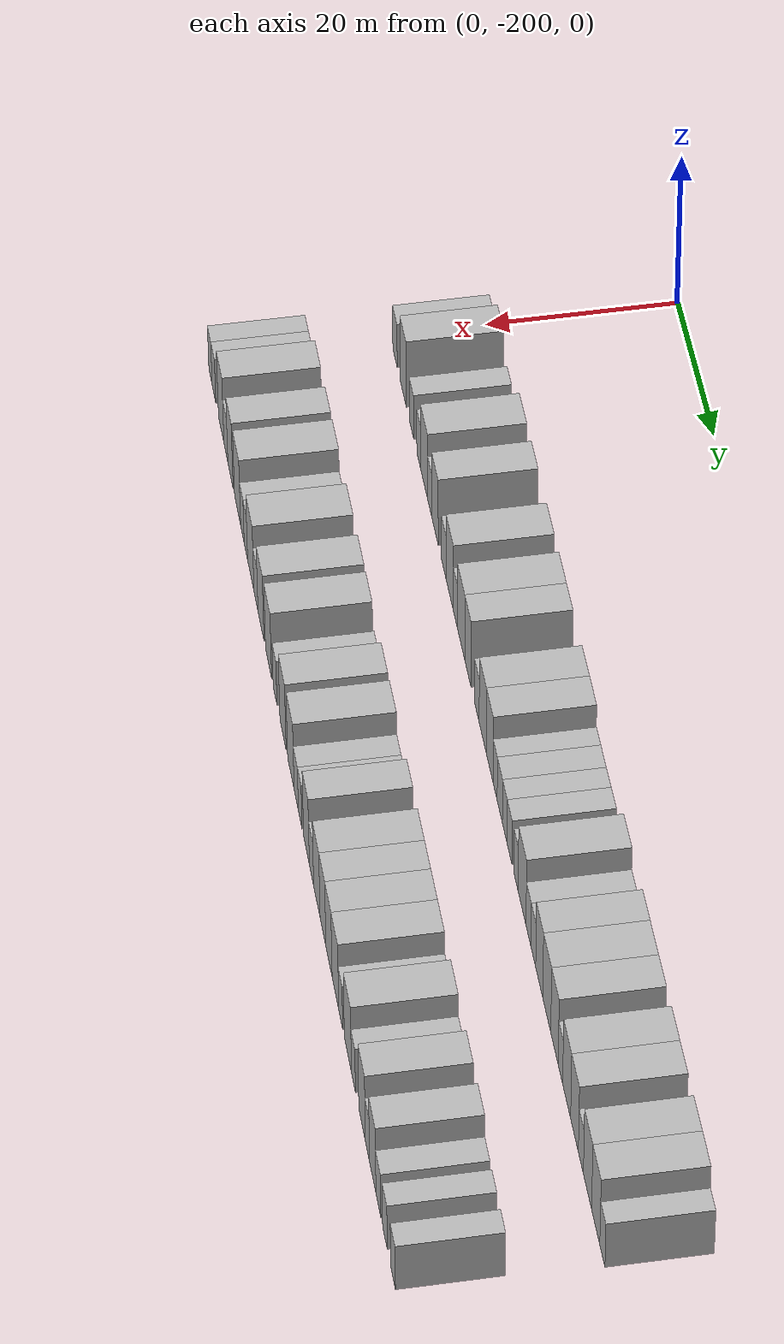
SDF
<sdf version="1.6">
 <world name="default">
  <model name="building_1">
   <static>1</static>
   <pose>25.0000 -196.5566 0 0.000000 0.000000 0.000000</pose>
   <link name="link">
    <pose>0 0 3.00 0 0 0</pose>
    <collision name="collision"><geometry><box><size>10.0000 2.8868 6.0000</size></box></geometry></collision>
    <visual name="visual">
     <cast_shadows>0</cast_shadows>
     <geometry><box><size>10.0000 2.8868 6.0000</size></box></geometry>
     <material>
      <script>
       <uri>model://HANNAS_wall/materials/scripts</uri>
       <uri>model://HANNAS_wall/materials/textures</uri>
       <name>vrc/HANNAS_wall</name>
      </script>
     </material>
    </visual>
   </link>
  </model>
  <model name="building_2">
   <static>1</static>
   <pose>25.0000 -191.1254 0 0.000000 0.000000 0.000000</pose>
   <link name="link">
    <pose>0 0 4.50 0 0 0</pose>
    <collision name="collision"><geometry><box><size>10.0000 3.9757 9.0000</size></box></geometry></collision>
    <visual name="visual">
     <cast_shadows>0</cast_shadows>
     <geometry><box><size>10.0000 3.9757 9.0000</size></box></geometry>
     <material>
      <script>
       <uri>model://HANNAS_wall/materials/scripts</uri>
       <uri>model://HANNAS_wall/materials/textures</uri>
       <name>vrc/HANNAS_wall</name>
      </script>
     </material>
    </visual>
   </link>
  </model>
  <model name="building_3">
   <static>1</static>
   <pose>25.0000 -185.7663 0 0.000000 0.000000 0.000000</pose>
   <link name="link">
    <pose>0 0 3.00 0 0 0</pose>
    <collision name="collision"><geometry><box><size>10.0000 2.7424 6.0000</size></box></geometry></collision>
    <visual name="visual">
     <cast_shadows>0</cast_shadows>
     <geometry><box><size>10.0000 2.7424 6.0000</size></box></geometry>
     <material>
      <script>
       <uri>model://HANNAS_wall/materials/scripts</uri>
       <uri>model://HANNAS_wall/materials/textures</uri>
       <name>vrc/HANNAS_wall</name>
      </script>
     </material>
    </visual>
   </link>
  </model>
  <model name="building_4">
   <static>1</static>
   <pose>25.0000 -181.1472 0 0.000000 0.000000 0.000000</pose>
   <link name="link">
    <pose>0 0 3.00 0 0 0</pose>
    <collision name="collision"><geometry><box><size>10.0000 2.4958 6.0000</size></box></geometry></collision>
    <visual name="visual">
     <cast_shadows>0</cast_shadows>
     <geometry><box><size>10.0000 2.4958 6.0000</size></box></geometry>
     <material>
      <script>
       <uri>model://HANNAS_wall/materials/scripts</uri>
       <uri>model://HANNAS_wall/materials/textures</uri>
       <name>vrc/HANNAS_wall</name>
      </script>
     </material>
    </visual>
   </link>
  </model>
  <model name="building_5">
   <static>1</static>
   <pose>25.0000 -177.6643 0 0.000000 0.000000 0.000000</pose>
   <link name="link">
    <pose>0 0 4.50 0 0 0</pose>
    <collision name="collision"><geometry><box><size>10.0000 4.4701 9.0000</size></box></geometry></collision>
    <visual name="visual">
     <cast_shadows>0</cast_shadows>
     <geometry><box><size>10.0000 4.4701 9.0000</size></box></geometry>
     <material>
      <script>
       <uri>model://HANNAS_wall/materials/scripts</uri>
       <uri>model://HANNAS_wall/materials/textures</uri>
       <name>vrc/HANNAS_wall</name>
      </script>
     </material>
    </visual>
   </link>
  </model>
  <model name="building_6">
   <static>1</static>
   <pose>25.0000 -174.1465 0 0.000000 0.000000 0.000000</pose>
   <link name="link">
    <pose>0 0 3.00 0 0 0</pose>
    <collision name="collision"><geometry><box><size>10.0000 2.5654 6.0000</size></box></geometry></collision>
    <visual name="visual">
     <cast_shadows>0</cast_shadows>
     <geometry><box><size>10.0000 2.5654 6.0000</size></box></geometry>
     <material>
      <script>
       <uri>model://HANNAS_wall/materials/scripts</uri>
       <uri>model://HANNAS_wall/materials/textures</uri>
       <name>vrc/HANNAS_wall</name>
      </script>
     </material>
    </visual>
   </link>
  </model>
  <model name="building_7">
   <static>1</static>
   <pose>25.0000 -170.8509 0 0.000000 0.000000 0.000000</pose>
   <link name="link">
    <pose>0 0 4.50 0 0 0</pose>
    <collision name="collision"><geometry><box><size>10.0000 4.0258 9.0000</size></box></geometry></collision>
    <visual name="visual">
     <cast_shadows>0</cast_shadows>
     <geometry><box><size>10.0000 4.0258 9.0000</size></box></geometry>
     <material>
      <script>
       <uri>model://HANNAS_wall/materials/scripts</uri>
       <uri>model://HANNAS_wall/materials/textures</uri>
       <name>vrc/HANNAS_wall</name>
      </script>
     </material>
    </visual>
   </link>
  </model>
  <model name="building_8">
   <static>1</static>
   <pose>25.0000 -165.3826 0 0.000000 0.000000 0.000000</pose>
   <link name="link">
    <pose>0 0 3.00 0 0 0</pose>
    <collision name="collision"><geometry><box><size>10.0000 2.9108 6.0000</size></box></geometry></collision>
    <visual name="visual">
     <cast_shadows>0</cast_shadows>
     <geometry><box><size>10.0000 2.9108 6.0000</size></box></geometry>
     <material>
      <script>
       <uri>model://HANNAS_wall/materials/scripts</uri>
       <uri>model://HANNAS_wall/materials/textures</uri>
       <name>vrc/HANNAS_wall</name>
      </script>
     </material>
    </visual>
   </link>
  </model>
  <model name="building_9">
   <static>1</static>
   <pose>25.0000 -161.6923 0 0.000000 0.000000 0.000000</pose>
   <link name="link">
    <pose>0 0 4.50 0 0 0</pose>
    <collision name="collision"><geometry><box><size>10.0000 4.4697 9.0000</size></box></geometry></collision>
    <visual name="visual">
     <cast_shadows>0</cast_shadows>
     <geometry><box><size>10.0000 4.4697 9.0000</size></box></geometry>
     <material>
      <script>
       <uri>model://HANNAS_wall/materials/scripts</uri>
       <uri>model://HANNAS_wall/materials/textures</uri>
       <name>vrc/HANNAS_wall</name>
      </script>
     </material>
    </visual>
   </link>
  </model>
  <model name="building_10">
   <static>1</static>
   <pose>25.0000 -158.2106 0 0.000000 0.000000 0.000000</pose>
   <link name="link">
    <pose>0 0 3.00 0 0 0</pose>
    <collision name="collision"><geometry><box><size>10.0000 2.4939 6.0000</size></box></geometry></collision>
    <visual name="visual">
     <cast_shadows>0</cast_shadows>
     <geometry><box><size>10.0000 2.4939 6.0000</size></box></geometry>
     <material>
      <script>
       <uri>model://HANNAS_wall/materials/scripts</uri>
       <uri>model://HANNAS_wall/materials/textures</uri>
       <name>vrc/HANNAS_wall</name>
      </script>
     </material>
    </visual>
   </link>
  </model>
  <model name="building_11">
   <static>1</static>
   <pose>25.0000 -154.7831 0 0.000000 0.000000 0.000000</pose>
   <link name="link">
    <pose>0 0 4.50 0 0 0</pose>
    <collision name="collision"><geometry><box><size>10.0000 4.3610 9.0000</size></box></geometry></collision>
    <visual name="visual">
     <cast_shadows>0</cast_shadows>
     <geometry><box><size>10.0000 4.3610 9.0000</size></box></geometry>
     <material>
      <script>
       <uri>model://HANNAS_wall/materials/scripts</uri>
       <uri>model://HANNAS_wall/materials/textures</uri>
       <name>vrc/HANNAS_wall</name>
      </script>
     </material>
    </visual>
   </link>
  </model>
  <model name="building_12">
   <static>1</static>
   <pose>25.0000 -150.7188 0 0.000000 0.000000 0.000000</pose>
   <link name="link">
    <pose>0 0 4.50 0 0 0</pose>
    <collision name="collision"><geometry><box><size>10.0000 3.7677 9.0000</size></box></geometry></collision>
    <visual name="visual">
     <cast_shadows>0</cast_shadows>
     <geometry><box><size>10.0000 3.7677 9.0000</size></box></geometry>
     <material>
      <script>
       <uri>model://HANNAS_wall/materials/scripts</uri>
       <uri>model://HANNAS_wall/materials/textures</uri>
       <name>vrc/HANNAS_wall</name>
      </script>
     </material>
    </visual>
   </link>
  </model>
  <model name="building_13">
   <static>1</static>
   <pose>25.0000 -145.3944 0 0.000000 0.000000 0.000000</pose>
   <link name="link">
    <pose>0 0 3.00 0 0 0</pose>
    <collision name="collision"><geometry><box><size>10.0000 2.8811 6.0000</size></box></geometry></collision>
    <visual name="visual">
     <cast_shadows>0</cast_shadows>
     <geometry><box><size>10.0000 2.8811 6.0000</size></box></geometry>
     <material>
      <script>
       <uri>model://HANNAS_wall/materials/scripts</uri>
       <uri>model://HANNAS_wall/materials/textures</uri>
       <name>vrc/HANNAS_wall</name>
      </script>
     </material>
    </visual>
   </link>
  </model>
  <model name="building_14">
   <static>1</static>
   <pose>25.0000 -141.8733 0 0.000000 0.000000 0.000000</pose>
   <link name="link">
    <pose>0 0 4.50 0 0 0</pose>
    <collision name="collision"><geometry><box><size>10.0000 4.1610 9.0000</size></box></geometry></collision>
    <visual name="visual">
     <cast_shadows>0</cast_shadows>
     <geometry><box><size>10.0000 4.1610 9.0000</size></box></geometry>
     <material>
      <script>
       <uri>model://HANNAS_wall/materials/scripts</uri>
       <uri>model://HANNAS_wall/materials/textures</uri>
       <name>vrc/HANNAS_wall</name>
      </script>
     </material>
    </visual>
   </link>
  </model>
  <model name="building_15">
   <static>1</static>
   <pose>25.0000 -137.8103 0 0.000000 0.000000 0.000000</pose>
   <link name="link">
    <pose>0 0 4.50 0 0 0</pose>
    <collision name="collision"><geometry><box><size>10.0000 3.9649 9.0000</size></box></geometry></collision>
    <visual name="visual">
     <cast_shadows>0</cast_shadows>
     <geometry><box><size>10.0000 3.9649 9.0000</size></box></geometry>
     <material>
      <script>
       <uri>model://HANNAS_wall/materials/scripts</uri>
       <uri>model://HANNAS_wall/materials/textures</uri>
       <name>vrc/HANNAS_wall</name>
      </script>
     </material>
    </visual>
   </link>
  </model>
  <model name="building_16">
   <static>1</static>
   <pose>25.0000 -134.6225 0 0.000000 0.000000 0.000000</pose>
   <link name="link">
    <pose>0 0 3.00 0 0 0</pose>
    <collision name="collision"><geometry><box><size>10.0000 2.4107 6.0000</size></box></geometry></collision>
    <visual name="visual">
     <cast_shadows>0</cast_shadows>
     <geometry><box><size>10.0000 2.4107 6.0000</size></box></geometry>
     <material>
      <script>
       <uri>model://HANNAS_wall/materials/scripts</uri>
       <uri>model://HANNAS_wall/materials/textures</uri>
       <name>vrc/HANNAS_wall</name>
      </script>
     </material>
    </visual>
   </link>
  </model>
  <model name="building_17">
   <static>1</static>
   <pose>25.0000 -131.9212 0 0.000000 0.000000 0.000000</pose>
   <link name="link">
    <pose>0 0 3.00 0 0 0</pose>
    <collision name="collision"><geometry><box><size>10.0000 2.9920 6.0000</size></box></geometry></collision>
    <visual name="visual">
     <cast_shadows>0</cast_shadows>
     <geometry><box><size>10.0000 2.9920 6.0000</size></box></geometry>
     <material>
      <script>
       <uri>model://HANNAS_wall/materials/scripts</uri>
       <uri>model://HANNAS_wall/materials/textures</uri>
       <name>vrc/HANNAS_wall</name>
      </script>
     </material>
    </visual>
   </link>
  </model>
  <model name="building_18">
   <static>1</static>
   <pose>25.0000 -129.0962 0 0.000000 0.000000 0.000000</pose>
   <link name="link">
    <pose>0 0 3.00 0 0 0</pose>
    <collision name="collision"><geometry><box><size>10.0000 2.6580 6.0000</size></box></geometry></collision>
    <visual name="visual">
     <cast_shadows>0</cast_shadows>
     <geometry><box><size>10.0000 2.6580 6.0000</size></box></geometry>
     <material>
      <script>
       <uri>model://HANNAS_wall/materials/scripts</uri>
       <uri>model://HANNAS_wall/materials/textures</uri>
       <name>vrc/HANNAS_wall</name>
      </script>
     </material>
    </visual>
   </link>
  </model>
  <model name="building_19">
   <static>1</static>
   <pose>25.0000 -126.3533 0 0.000000 0.000000 0.000000</pose>
   <link name="link">
    <pose>0 0 3.00 0 0 0</pose>
    <collision name="collision"><geometry><box><size>10.0000 2.8278 6.0000</size></box></geometry></collision>
    <visual name="visual">
     <cast_shadows>0</cast_shadows>
     <geometry><box><size>10.0000 2.8278 6.0000</size></box></geometry>
     <material>
      <script>
       <uri>model://HANNAS_wall/materials/scripts</uri>
       <uri>model://HANNAS_wall/materials/textures</uri>
       <name>vrc/HANNAS_wall</name>
      </script>
     </material>
    </visual>
   </link>
  </model>
  <model name="building_20">
   <static>1</static>
   <pose>25.0000 -122.6605 0 0.000000 0.000000 0.000000</pose>
   <link name="link">
    <pose>0 0 3.00 0 0 0</pose>
    <collision name="collision"><geometry><box><size>10.0000 2.5579 6.0000</size></box></geometry></collision>
    <visual name="visual">
     <cast_shadows>0</cast_shadows>
     <geometry><box><size>10.0000 2.5579 6.0000</size></box></geometry>
     <material>
      <script>
       <uri>model://HANNAS_wall/materials/scripts</uri>
       <uri>model://HANNAS_wall/materials/textures</uri>
       <name>vrc/HANNAS_wall</name>
      </script>
     </material>
    </visual>
   </link>
  </model>
  <model name="building_21">
   <static>1</static>
   <pose>25.0000 -119.1797 0 0.000000 0.000000 0.000000</pose>
   <link name="link">
    <pose>0 0 4.50 0 0 0</pose>
    <collision name="collision"><geometry><box><size>10.0000 4.4037 9.0000</size></box></geometry></collision>
    <visual name="visual">
     <cast_shadows>0</cast_shadows>
     <geometry><box><size>10.0000 4.4037 9.0000</size></box></geometry>
     <material>
      <script>
       <uri>model://HANNAS_wall/materials/scripts</uri>
       <uri>model://HANNAS_wall/materials/textures</uri>
       <name>vrc/HANNAS_wall</name>
      </script>
     </material>
    </visual>
   </link>
  </model>
  <model name="building_22">
   <static>1</static>
   <pose>25.0000 -115.6158 0 0.000000 0.000000 0.000000</pose>
   <link name="link">
    <pose>0 0 3.00 0 0 0</pose>
    <collision name="collision"><geometry><box><size>10.0000 2.7241 6.0000</size></box></geometry></collision>
    <visual name="visual">
     <cast_shadows>0</cast_shadows>
     <geometry><box><size>10.0000 2.7241 6.0000</size></box></geometry>
     <material>
      <script>
       <uri>model://HANNAS_wall/materials/scripts</uri>
       <uri>model://HANNAS_wall/materials/textures</uri>
       <name>vrc/HANNAS_wall</name>
      </script>
     </material>
    </visual>
   </link>
  </model>
  <model name="building_23">
   <static>1</static>
   <pose>25.0000 -112.9241 0 0.000000 0.000000 0.000000</pose>
   <link name="link">
    <pose>0 0 3.00 0 0 0</pose>
    <collision name="collision"><geometry><box><size>10.0000 2.6591 6.0000</size></box></geometry></collision>
    <visual name="visual">
     <cast_shadows>0</cast_shadows>
     <geometry><box><size>10.0000 2.6591 6.0000</size></box></geometry>
     <material>
      <script>
       <uri>model://HANNAS_wall/materials/scripts</uri>
       <uri>model://HANNAS_wall/materials/textures</uri>
       <name>vrc/HANNAS_wall</name>
      </script>
     </material>
    </visual>
   </link>
  </model>
  <model name="building_24">
   <static>1</static>
   <pose>25.0000 -109.6383 0 0.000000 0.000000 0.000000</pose>
   <link name="link">
    <pose>0 0 4.50 0 0 0</pose>
    <collision name="collision"><geometry><box><size>10.0000 3.9124 9.0000</size></box></geometry></collision>
    <visual name="visual">
     <cast_shadows>0</cast_shadows>
     <geometry><box><size>10.0000 3.9124 9.0000</size></box></geometry>
     <material>
      <script>
       <uri>model://HANNAS_wall/materials/scripts</uri>
       <uri>model://HANNAS_wall/materials/textures</uri>
       <name>vrc/HANNAS_wall</name>
      </script>
     </material>
    </visual>
   </link>
  </model>
  <model name="building_25">
   <static>1</static>
   <pose>25.0000 -105.5020 0 0.000000 0.000000 0.000000</pose>
   <link name="link">
    <pose>0 0 4.50 0 0 0</pose>
    <collision name="collision"><geometry><box><size>10.0000 4.3603 9.0000</size></box></geometry></collision>
    <visual name="visual">
     <cast_shadows>0</cast_shadows>
     <geometry><box><size>10.0000 4.3603 9.0000</size></box></geometry>
     <material>
      <script>
       <uri>model://HANNAS_wall/materials/scripts</uri>
       <uri>model://HANNAS_wall/materials/textures</uri>
       <name>vrc/HANNAS_wall</name>
      </script>
     </material>
    </visual>
   </link>
  </model>
  <model name="building_26">
   <static>1</static>
   <pose>25.0000 -101.3119 0 0.000000 0.000000 0.000000</pose>
   <link name="link">
    <pose>0 0 4.50 0 0 0</pose>
    <collision name="collision"><geometry><box><size>10.0000 4.0201 9.0000</size></box></geometry></collision>
    <visual name="visual">
     <cast_shadows>0</cast_shadows>
     <geometry><box><size>10.0000 4.0201 9.0000</size></box></geometry>
     <material>
      <script>
       <uri>model://HANNAS_wall/materials/scripts</uri>
       <uri>model://HANNAS_wall/materials/textures</uri>
       <name>vrc/HANNAS_wall</name>
      </script>
     </material>
    </visual>
   </link>
  </model>
  <model name="building_27">
   <static>1</static>
   <pose>25.0000 -98.0989 0 0.000000 0.000000 0.000000</pose>
   <link name="link">
    <pose>0 0 3.00 0 0 0</pose>
    <collision name="collision"><geometry><box><size>10.0000 2.4057 6.0000</size></box></geometry></collision>
    <visual name="visual">
     <cast_shadows>0</cast_shadows>
     <geometry><box><size>10.0000 2.4057 6.0000</size></box></geometry>
     <material>
      <script>
       <uri>model://HANNAS_wall/materials/scripts</uri>
       <uri>model://HANNAS_wall/materials/textures</uri>
       <name>vrc/HANNAS_wall</name>
      </script>
     </material>
    </visual>
   </link>
  </model>
  <model name="building_28">
   <static>1</static>
   <pose>25.0000 -94.7731 0 0.000000 0.000000 0.000000</pose>
   <link name="link">
    <pose>0 0 4.50 0 0 0</pose>
    <collision name="collision"><geometry><box><size>10.0000 4.2459 9.0000</size></box></geometry></collision>
    <visual name="visual">
     <cast_shadows>0</cast_shadows>
     <geometry><box><size>10.0000 4.2459 9.0000</size></box></geometry>
     <material>
      <script>
       <uri>model://HANNAS_wall/materials/scripts</uri>
       <uri>model://HANNAS_wall/materials/textures</uri>
       <name>vrc/HANNAS_wall</name>
      </script>
     </material>
    </visual>
   </link>
  </model>
  <model name="building_29">
   <static>1</static>
   <pose>25.0000 -90.6110 0 0.000000 0.000000 0.000000</pose>
   <link name="link">
    <pose>0 0 4.50 0 0 0</pose>
    <collision name="collision"><geometry><box><size>10.0000 4.0784 9.0000</size></box></geometry></collision>
    <visual name="visual">
     <cast_shadows>0</cast_shadows>
     <geometry><box><size>10.0000 4.0784 9.0000</size></box></geometry>
     <material>
      <script>
       <uri>model://HANNAS_wall/materials/scripts</uri>
       <uri>model://HANNAS_wall/materials/textures</uri>
       <name>vrc/HANNAS_wall</name>
      </script>
     </material>
    </visual>
   </link>
  </model>
  <model name="building_30">
   <static>1</static>
   <pose>25.0000 -87.2461 0 0.000000 0.000000 0.000000</pose>
   <link name="link">
    <pose>0 0 3.00 0 0 0</pose>
    <collision name="collision"><geometry><box><size>10.0000 2.6515 6.0000</size></box></geometry></collision>
    <visual name="visual">
     <cast_shadows>0</cast_shadows>
     <geometry><box><size>10.0000 2.6515 6.0000</size></box></geometry>
     <material>
      <script>
       <uri>model://HANNAS_wall/materials/scripts</uri>
       <uri>model://HANNAS_wall/materials/textures</uri>
       <name>vrc/HANNAS_wall</name>
      </script>
     </material>
    </visual>
   </link>
  </model>
  <model name="building_31">
   <static>1</static>
   <pose>25.0000 -83.7917 0 0.000000 0.000000 0.000000</pose>
   <link name="link">
    <pose>0 0 4.50 0 0 0</pose>
    <collision name="collision"><geometry><box><size>10.0000 4.2573 9.0000</size></box></geometry></collision>
    <visual name="visual">
     <cast_shadows>0</cast_shadows>
     <geometry><box><size>10.0000 4.2573 9.0000</size></box></geometry>
     <material>
      <script>
       <uri>model://HANNAS_wall/materials/scripts</uri>
       <uri>model://HANNAS_wall/materials/textures</uri>
       <name>vrc/HANNAS_wall</name>
      </script>
     </material>
    </visual>
   </link>
  </model>
  <model name="building_32">
   <static>1</static>
   <pose>25.0000 -79.5484 0 0.000000 0.000000 0.000000</pose>
   <link name="link">
    <pose>0 0 4.50 0 0 0</pose>
    <collision name="collision"><geometry><box><size>10.0000 4.2294 9.0000</size></box></geometry></collision>
    <visual name="visual">
     <cast_shadows>0</cast_shadows>
     <geometry><box><size>10.0000 4.2294 9.0000</size></box></geometry>
     <material>
      <script>
       <uri>model://HANNAS_wall/materials/scripts</uri>
       <uri>model://HANNAS_wall/materials/textures</uri>
       <name>vrc/HANNAS_wall</name>
      </script>
     </material>
    </visual>
   </link>
  </model>
  <model name="building_33">
   <static>1</static>
   <pose>25.0000 -76.1040 0 0.000000 0.000000 0.000000</pose>
   <link name="link">
    <pose>0 0 3.00 0 0 0</pose>
    <collision name="collision"><geometry><box><size>10.0000 2.6593 6.0000</size></box></geometry></collision>
    <visual name="visual">
     <cast_shadows>0</cast_shadows>
     <geometry><box><size>10.0000 2.6593 6.0000</size></box></geometry>
     <material>
      <script>
       <uri>model://HANNAS_wall/materials/scripts</uri>
       <uri>model://HANNAS_wall/materials/textures</uri>
       <name>vrc/HANNAS_wall</name>
      </script>
     </material>
    </visual>
   </link>
  </model>
  <model name="building_101">
   <static>1</static>
   <pose>44.0000 -196.7867 0 0.000000 0.000000 0.000000</pose>
   <link name="link">
    <pose>0 0 3.00 0 0 0</pose>
    <collision name="collision"><geometry><box><size>10.0000 2.4267 6.0000</size></box></geometry></collision>
    <visual name="visual">
     <cast_shadows>0</cast_shadows>
     <geometry><box><size>10.0000 2.4267 6.0000</size></box></geometry>
     <material>
      <script>
       <uri>model://HANNAS_wall/materials/scripts</uri>
       <uri>model://HANNAS_wall/materials/textures</uri>
       <name>vrc/HANNAS_wall</name>
      </script>
     </material>
    </visual>
   </link>
  </model>
  <model name="building_102">
   <static>1</static>
   <pose>44.0000 -194.2167 0 0.000000 0.000000 0.000000</pose>
   <link name="link">
    <pose>0 0 3.00 0 0 0</pose>
    <collision name="collision"><geometry><box><size>10.0000 2.7133 6.0000</size></box></geometry></collision>
    <visual name="visual">
     <cast_shadows>0</cast_shadows>
     <geometry><box><size>10.0000 2.7133 6.0000</size></box></geometry>
     <material>
      <script>
       <uri>model://HANNAS_wall/materials/scripts</uri>
       <uri>model://HANNAS_wall/materials/textures</uri>
       <name>vrc/HANNAS_wall</name>
      </script>
     </material>
    </visual>
   </link>
  </model>
  <model name="building_103">
   <static>1</static>
   <pose>44.0000 -188.8506 0 0.000000 0.000000 0.000000</pose>
   <link name="link">
    <pose>0 0 4.50 0 0 0</pose>
    <collision name="collision"><geometry><box><size>10.0000 4.0188 9.0000</size></box></geometry></collision>
    <visual name="visual">
     <cast_shadows>0</cast_shadows>
     <geometry><box><size>10.0000 4.0188 9.0000</size></box></geometry>
     <material>
      <script>
       <uri>model://HANNAS_wall/materials/scripts</uri>
       <uri>model://HANNAS_wall/materials/textures</uri>
       <name>vrc/HANNAS_wall</name>
      </script>
     </material>
    </visual>
   </link>
  </model>
  <model name="building_104">
   <static>1</static>
   <pose>44.0000 -185.4043 0 0.000000 0.000000 0.000000</pose>
   <link name="link">
    <pose>0 0 3.00 0 0 0</pose>
    <collision name="collision"><geometry><box><size>10.0000 2.8738 6.0000</size></box></geometry></collision>
    <visual name="visual">
     <cast_shadows>0</cast_shadows>
     <geometry><box><size>10.0000 2.8738 6.0000</size></box></geometry>
     <material>
      <script>
       <uri>model://HANNAS_wall/materials/scripts</uri>
       <uri>model://HANNAS_wall/materials/textures</uri>
       <name>vrc/HANNAS_wall</name>
      </script>
     </material>
    </visual>
   </link>
  </model>
  <model name="building_105">
   <static>1</static>
   <pose>44.0000 -182.0628 0 0.000000 0.000000 0.000000</pose>
   <link name="link">
    <pose>0 0 4.50 0 0 0</pose>
    <collision name="collision"><geometry><box><size>10.0000 3.8092 9.0000</size></box></geometry></collision>
    <visual name="visual">
     <cast_shadows>0</cast_shadows>
     <geometry><box><size>10.0000 3.8092 9.0000</size></box></geometry>
     <material>
      <script>
       <uri>model://HANNAS_wall/materials/scripts</uri>
       <uri>model://HANNAS_wall/materials/textures</uri>
       <name>vrc/HANNAS_wall</name>
      </script>
     </material>
    </visual>
   </link>
  </model>
  <model name="building_106">
   <static>1</static>
   <pose>44.0000 -176.9590 0 0.000000 0.000000 0.000000</pose>
   <link name="link">
    <pose>0 0 4.50 0 0 0</pose>
    <collision name="collision"><geometry><box><size>10.0000 4.3985 9.0000</size></box></geometry></collision>
    <visual name="visual">
     <cast_shadows>0</cast_shadows>
     <geometry><box><size>10.0000 4.3985 9.0000</size></box></geometry>
     <material>
      <script>
       <uri>model://HANNAS_wall/materials/scripts</uri>
       <uri>model://HANNAS_wall/materials/textures</uri>
       <name>vrc/HANNAS_wall</name>
      </script>
     </material>
    </visual>
   </link>
  </model>
  <model name="building_107">
   <static>1</static>
   <pose>44.0000 -173.5028 0 0.000000 0.000000 0.000000</pose>
   <link name="link">
    <pose>0 0 3.00 0 0 0</pose>
    <collision name="collision"><geometry><box><size>10.0000 2.5139 6.0000</size></box></geometry></collision>
    <visual name="visual">
     <cast_shadows>0</cast_shadows>
     <geometry><box><size>10.0000 2.5139 6.0000</size></box></geometry>
     <material>
      <script>
       <uri>model://HANNAS_wall/materials/scripts</uri>
       <uri>model://HANNAS_wall/materials/textures</uri>
       <name>vrc/HANNAS_wall</name>
      </script>
     </material>
    </visual>
   </link>
  </model>
  <model name="building_108">
   <static>1</static>
   <pose>44.0000 -171.0307 0 0.000000 0.000000 0.000000</pose>
   <link name="link">
    <pose>0 0 3.00 0 0 0</pose>
    <collision name="collision"><geometry><box><size>10.0000 2.4303 6.0000</size></box></geometry></collision>
    <visual name="visual">
     <cast_shadows>0</cast_shadows>
     <geometry><box><size>10.0000 2.4303 6.0000</size></box></geometry>
     <material>
      <script>
       <uri>model://HANNAS_wall/materials/scripts</uri>
       <uri>model://HANNAS_wall/materials/textures</uri>
       <name>vrc/HANNAS_wall</name>
      </script>
     </material>
    </visual>
   </link>
  </model>
  <model name="building_109">
   <static>1</static>
   <pose>44.0000 -167.5669 0 0.000000 0.000000 0.000000</pose>
   <link name="link">
    <pose>0 0 4.50 0 0 0</pose>
    <collision name="collision"><geometry><box><size>10.0000 4.4973 9.0000</size></box></geometry></collision>
    <visual name="visual">
     <cast_shadows>0</cast_shadows>
     <geometry><box><size>10.0000 4.4973 9.0000</size></box></geometry>
     <material>
      <script>
       <uri>model://HANNAS_wall/materials/scripts</uri>
       <uri>model://HANNAS_wall/materials/textures</uri>
       <name>vrc/HANNAS_wall</name>
      </script>
     </material>
    </visual>
   </link>
  </model>
  <model name="building_110">
   <static>1</static>
   <pose>44.0000 -163.9186 0 0.000000 0.000000 0.000000</pose>
   <link name="link">
    <pose>0 0 3.00 0 0 0</pose>
    <collision name="collision"><geometry><box><size>10.0000 2.7993 6.0000</size></box></geometry></collision>
    <visual name="visual">
     <cast_shadows>0</cast_shadows>
     <geometry><box><size>10.0000 2.7993 6.0000</size></box></geometry>
     <material>
      <script>
       <uri>model://HANNAS_wall/materials/scripts</uri>
       <uri>model://HANNAS_wall/materials/textures</uri>
       <name>vrc/HANNAS_wall</name>
      </script>
     </material>
    </visual>
   </link>
  </model>
  <model name="building_111">
   <static>1</static>
   <pose>44.0000 -160.4133 0 0.000000 0.000000 0.000000</pose>
   <link name="link">
    <pose>0 0 4.50 0 0 0</pose>
    <collision name="collision"><geometry><box><size>10.0000 4.2114 9.0000</size></box></geometry></collision>
    <visual name="visual">
     <cast_shadows>0</cast_shadows>
     <geometry><box><size>10.0000 4.2114 9.0000</size></box></geometry>
     <material>
      <script>
       <uri>model://HANNAS_wall/materials/scripts</uri>
       <uri>model://HANNAS_wall/materials/textures</uri>
       <name>vrc/HANNAS_wall</name>
      </script>
     </material>
    </visual>
   </link>
  </model>
  <model name="building_112">
   <static>1</static>
   <pose>44.0000 -155.1911 0 0.000000 0.000000 0.000000</pose>
   <link name="link">
    <pose>0 0 4.50 0 0 0</pose>
    <collision name="collision"><geometry><box><size>10.0000 4.2330 9.0000</size></box></geometry></collision>
    <visual name="visual">
     <cast_shadows>0</cast_shadows>
     <geometry><box><size>10.0000 4.2330 9.0000</size></box></geometry>
     <material>
      <script>
       <uri>model://HANNAS_wall/materials/scripts</uri>
       <uri>model://HANNAS_wall/materials/textures</uri>
       <name>vrc/HANNAS_wall</name>
      </script>
     </material>
    </visual>
   </link>
  </model>
  <model name="building_113">
   <static>1</static>
   <pose>44.0000 -150.7769 0 0.000000 0.000000 0.000000</pose>
   <link name="link">
    <pose>0 0 3.00 0 0 0</pose>
    <collision name="collision"><geometry><box><size>10.0000 2.5955 6.0000</size></box></geometry></collision>
    <visual name="visual">
     <cast_shadows>0</cast_shadows>
     <geometry><box><size>10.0000 2.5955 6.0000</size></box></geometry>
     <material>
      <script>
       <uri>model://HANNAS_wall/materials/scripts</uri>
       <uri>model://HANNAS_wall/materials/textures</uri>
       <name>vrc/HANNAS_wall</name>
      </script>
     </material>
    </visual>
   </link>
  </model>
  <model name="building_114">
   <static>1</static>
   <pose>44.0000 -145.3938 0 0.000000 0.000000 0.000000</pose>
   <link name="link">
    <pose>0 0 4.50 0 0 0</pose>
    <collision name="collision"><geometry><box><size>10.0000 4.1707 9.0000</size></box></geometry></collision>
    <visual name="visual">
     <cast_shadows>0</cast_shadows>
     <geometry><box><size>10.0000 4.1707 9.0000</size></box></geometry>
     <material>
      <script>
       <uri>model://HANNAS_wall/materials/scripts</uri>
       <uri>model://HANNAS_wall/materials/textures</uri>
       <name>vrc/HANNAS_wall</name>
      </script>
     </material>
    </visual>
   </link>
  </model>
  <model name="building_115">
   <static>1</static>
   <pose>44.0000 -140.1387 0 0.000000 0.000000 0.000000</pose>
   <link name="link">
    <pose>0 0 4.50 0 0 0</pose>
    <collision name="collision"><geometry><box><size>10.0000 4.3393 9.0000</size></box></geometry></collision>
    <visual name="visual">
     <cast_shadows>0</cast_shadows>
     <geometry><box><size>10.0000 4.3393 9.0000</size></box></geometry>
     <material>
      <script>
       <uri>model://HANNAS_wall/materials/scripts</uri>
       <uri>model://HANNAS_wall/materials/textures</uri>
       <name>vrc/HANNAS_wall</name>
      </script>
     </material>
    </visual>
   </link>
  </model>
  <model name="building_116">
   <static>1</static>
   <pose>44.0000 -136.5784 0 0.000000 0.000000 0.000000</pose>
   <link name="link">
    <pose>0 0 3.00 0 0 0</pose>
    <collision name="collision"><geometry><box><size>10.0000 2.7813 6.0000</size></box></geometry></collision>
    <visual name="visual">
     <cast_shadows>0</cast_shadows>
     <geometry><box><size>10.0000 2.7813 6.0000</size></box></geometry>
     <material>
      <script>
       <uri>model://HANNAS_wall/materials/scripts</uri>
       <uri>model://HANNAS_wall/materials/textures</uri>
       <name>vrc/HANNAS_wall</name>
      </script>
     </material>
    </visual>
   </link>
  </model>
  <model name="building_117">
   <static>1</static>
   <pose>44.0000 -133.9641 0 0.000000 0.000000 0.000000</pose>
   <link name="link">
    <pose>0 0 3.00 0 0 0</pose>
    <collision name="collision"><geometry><box><size>10.0000 2.4475 6.0000</size></box></geometry></collision>
    <visual name="visual">
     <cast_shadows>0</cast_shadows>
     <geometry><box><size>10.0000 2.4475 6.0000</size></box></geometry>
     <material>
      <script>
       <uri>model://HANNAS_wall/materials/scripts</uri>
       <uri>model://HANNAS_wall/materials/textures</uri>
       <name>vrc/HANNAS_wall</name>
      </script>
     </material>
    </visual>
   </link>
  </model>
  <model name="building_118">
   <static>1</static>
   <pose>44.0000 -129.8582 0 0.000000 0.000000 0.000000</pose>
   <link name="link">
    <pose>0 0 4.50 0 0 0</pose>
    <collision name="collision"><geometry><box><size>10.0000 3.7642 9.0000</size></box></geometry></collision>
    <visual name="visual">
     <cast_shadows>0</cast_shadows>
     <geometry><box><size>10.0000 3.7642 9.0000</size></box></geometry>
     <material>
      <script>
       <uri>model://HANNAS_wall/materials/scripts</uri>
       <uri>model://HANNAS_wall/materials/textures</uri>
       <name>vrc/HANNAS_wall</name>
      </script>
     </material>
    </visual>
   </link>
  </model>
  <model name="building_119">
   <static>1</static>
   <pose>44.0000 -126.5897 0 0.000000 0.000000 0.000000</pose>
   <link name="link">
    <pose>0 0 3.00 0 0 0</pose>
    <collision name="collision"><geometry><box><size>10.0000 2.7729 6.0000</size></box></geometry></collision>
    <visual name="visual">
     <cast_shadows>0</cast_shadows>
     <geometry><box><size>10.0000 2.7729 6.0000</size></box></geometry>
     <material>
      <script>
       <uri>model://HANNAS_wall/materials/scripts</uri>
       <uri>model://HANNAS_wall/materials/textures</uri>
       <name>vrc/HANNAS_wall</name>
      </script>
     </material>
    </visual>
   </link>
  </model>
  <model name="building_120">
   <static>1</static>
   <pose>44.0000 -123.1337 0 0.000000 0.000000 0.000000</pose>
   <link name="link">
    <pose>0 0 4.50 0 0 0</pose>
    <collision name="collision"><geometry><box><size>10.0000 4.1390 9.0000</size></box></geometry></collision>
    <visual name="visual">
     <cast_shadows>0</cast_shadows>
     <geometry><box><size>10.0000 4.1390 9.0000</size></box></geometry>
     <material>
      <script>
       <uri>model://HANNAS_wall/materials/scripts</uri>
       <uri>model://HANNAS_wall/materials/textures</uri>
       <name>vrc/HANNAS_wall</name>
      </script>
     </material>
    </visual>
   </link>
  </model>
  <model name="building_121">
   <static>1</static>
   <pose>44.0000 -119.2107 0 0.000000 0.000000 0.000000</pose>
   <link name="link">
    <pose>0 0 4.50 0 0 0</pose>
    <collision name="collision"><geometry><box><size>10.0000 3.7071 9.0000</size></box></geometry></collision>
    <visual name="visual">
     <cast_shadows>0</cast_shadows>
     <geometry><box><size>10.0000 3.7071 9.0000</size></box></geometry>
     <material>
      <script>
       <uri>model://HANNAS_wall/materials/scripts</uri>
       <uri>model://HANNAS_wall/materials/textures</uri>
       <name>vrc/HANNAS_wall</name>
      </script>
     </material>
    </visual>
   </link>
  </model>
  <model name="building_122">
   <static>1</static>
   <pose>44.0000 -115.3932 0 0.000000 0.000000 0.000000</pose>
   <link name="link">
    <pose>0 0 4.50 0 0 0</pose>
    <collision name="collision"><geometry><box><size>10.0000 3.9279 9.0000</size></box></geometry></collision>
    <visual name="visual">
     <cast_shadows>0</cast_shadows>
     <geometry><box><size>10.0000 3.9279 9.0000</size></box></geometry>
     <material>
      <script>
       <uri>model://HANNAS_wall/materials/scripts</uri>
       <uri>model://HANNAS_wall/materials/textures</uri>
       <name>vrc/HANNAS_wall</name>
      </script>
     </material>
    </visual>
   </link>
  </model>
  <model name="building_123">
   <static>1</static>
   <pose>44.0000 -111.3589 0 0.000000 0.000000 0.000000</pose>
   <link name="link">
    <pose>0 0 4.50 0 0 0</pose>
    <collision name="collision"><geometry><box><size>10.0000 4.1407 9.0000</size></box></geometry></collision>
    <visual name="visual">
     <cast_shadows>0</cast_shadows>
     <geometry><box><size>10.0000 4.1407 9.0000</size></box></geometry>
     <material>
      <script>
       <uri>model://HANNAS_wall/materials/scripts</uri>
       <uri>model://HANNAS_wall/materials/textures</uri>
       <name>vrc/HANNAS_wall</name>
      </script>
     </material>
    </visual>
   </link>
  </model>
  <model name="building_124">
   <static>1</static>
   <pose>44.0000 -108.0415 0 0.000000 0.000000 0.000000</pose>
   <link name="link">
    <pose>0 0 3.00 0 0 0</pose>
    <collision name="collision"><geometry><box><size>10.0000 2.4942 6.0000</size></box></geometry></collision>
    <visual name="visual">
     <cast_shadows>0</cast_shadows>
     <geometry><box><size>10.0000 2.4942 6.0000</size></box></geometry>
     <material>
      <script>
       <uri>model://HANNAS_wall/materials/scripts</uri>
       <uri>model://HANNAS_wall/materials/textures</uri>
       <name>vrc/HANNAS_wall</name>
      </script>
     </material>
    </visual>
   </link>
  </model>
  <model name="building_125">
   <static>1</static>
   <pose>44.0000 -103.6174 0 0.000000 0.000000 0.000000</pose>
   <link name="link">
    <pose>0 0 4.50 0 0 0</pose>
    <collision name="collision"><geometry><box><size>10.0000 4.3539 9.0000</size></box></geometry></collision>
    <visual name="visual">
     <cast_shadows>0</cast_shadows>
     <geometry><box><size>10.0000 4.3539 9.0000</size></box></geometry>
     <material>
      <script>
       <uri>model://HANNAS_wall/materials/scripts</uri>
       <uri>model://HANNAS_wall/materials/textures</uri>
       <name>vrc/HANNAS_wall</name>
      </script>
     </material>
    </visual>
   </link>
  </model>
  <model name="building_126">
   <static>1</static>
   <pose>44.0000 -100.2055 0 0.000000 0.000000 0.000000</pose>
   <link name="link">
    <pose>0 0 3.00 0 0 0</pose>
    <collision name="collision"><geometry><box><size>10.0000 2.4700 6.0000</size></box></geometry></collision>
    <visual name="visual">
     <cast_shadows>0</cast_shadows>
     <geometry><box><size>10.0000 2.4700 6.0000</size></box></geometry>
     <material>
      <script>
       <uri>model://HANNAS_wall/materials/scripts</uri>
       <uri>model://HANNAS_wall/materials/textures</uri>
       <name>vrc/HANNAS_wall</name>
      </script>
     </material>
    </visual>
   </link>
  </model>
  <model name="building_127">
   <static>1</static>
   <pose>44.0000 -94.9787 0 0.000000 0.000000 0.000000</pose>
   <link name="link">
    <pose>0 0 4.50 0 0 0</pose>
    <collision name="collision"><geometry><box><size>10.0000 3.9836 9.0000</size></box></geometry></collision>
    <visual name="visual">
     <cast_shadows>0</cast_shadows>
     <geometry><box><size>10.0000 3.9836 9.0000</size></box></geometry>
     <material>
      <script>
       <uri>model://HANNAS_wall/materials/scripts</uri>
       <uri>model://HANNAS_wall/materials/textures</uri>
       <name>vrc/HANNAS_wall</name>
      </script>
     </material>
    </visual>
   </link>
  </model>
  <model name="building_128">
   <static>1</static>
   <pose>44.0000 -91.7466 0 0.000000 0.000000 0.000000</pose>
   <link name="link">
    <pose>0 0 3.00 0 0 0</pose>
    <collision name="collision"><geometry><box><size>10.0000 2.4806 6.0000</size></box></geometry></collision>
    <visual name="visual">
     <cast_shadows>0</cast_shadows>
     <geometry><box><size>10.0000 2.4806 6.0000</size></box></geometry>
     <material>
      <script>
       <uri>model://HANNAS_wall/materials/scripts</uri>
       <uri>model://HANNAS_wall/materials/textures</uri>
       <name>vrc/HANNAS_wall</name>
      </script>
     </material>
    </visual>
   </link>
  </model>
  <model name="building_129">
   <static>1</static>
   <pose>44.0000 -88.5901 0 0.000000 0.000000 0.000000</pose>
   <link name="link">
    <pose>0 0 4.50 0 0 0</pose>
    <collision name="collision"><geometry><box><size>10.0000 3.8323 9.0000</size></box></geometry></collision>
    <visual name="visual">
     <cast_shadows>0</cast_shadows>
     <geometry><box><size>10.0000 3.8323 9.0000</size></box></geometry>
     <material>
      <script>
       <uri>model://HANNAS_wall/materials/scripts</uri>
       <uri>model://HANNAS_wall/materials/textures</uri>
       <name>vrc/HANNAS_wall</name>
      </script>
     </material>
    </visual>
   </link>
  </model>
  <model name="building_130">
   <static>1</static>
   <pose>44.0000 -85.2174 0 0.000000 0.000000 0.000000</pose>
   <link name="link">
    <pose>0 0 3.00 0 0 0</pose>
    <collision name="collision"><geometry><box><size>10.0000 2.9130 6.0000</size></box></geometry></collision>
    <visual name="visual">
     <cast_shadows>0</cast_shadows>
     <geometry><box><size>10.0000 2.9130 6.0000</size></box></geometry>
     <material>
      <script>
       <uri>model://HANNAS_wall/materials/scripts</uri>
       <uri>model://HANNAS_wall/materials/textures</uri>
       <name>vrc/HANNAS_wall</name>
      </script>
     </material>
    </visual>
   </link>
  </model>
  <model name="building_131">
   <static>1</static>
   <pose>44.0000 -81.3924 0 0.000000 0.000000 0.000000</pose>
   <link name="link">
    <pose>0 0 3.00 0 0 0</pose>
    <collision name="collision"><geometry><box><size>10.0000 2.7370 6.0000</size></box></geometry></collision>
    <visual name="visual">
     <cast_shadows>0</cast_shadows>
     <geometry><box><size>10.0000 2.7370 6.0000</size></box></geometry>
     <material>
      <script>
       <uri>model://HANNAS_wall/materials/scripts</uri>
       <uri>model://HANNAS_wall/materials/textures</uri>
       <name>vrc/HANNAS_wall</name>
      </script>
     </material>
    </visual>
   </link>
  </model>
  <model name="building_132">
   <static>1</static>
   <pose>44.0000 -76.6421 0 0.000000 0.000000 0.000000</pose>
   <link name="link">
    <pose>0 0 3.00 0 0 0</pose>
    <collision name="collision"><geometry><box><size>10.0000 2.7636 6.0000</size></box></geometry></collision>
    <visual name="visual">
     <cast_shadows>0</cast_shadows>
     <geometry><box><size>10.0000 2.7636 6.0000</size></box></geometry>
     <material>
      <script>
       <uri>model://HANNAS_wall/materials/scripts</uri>
       <uri>model://HANNAS_wall/materials/textures</uri>
       <name>vrc/HANNAS_wall</name>
      </script>
     </material>
    </visual>
   </link>
  </model>
 </world>
</sdf>
